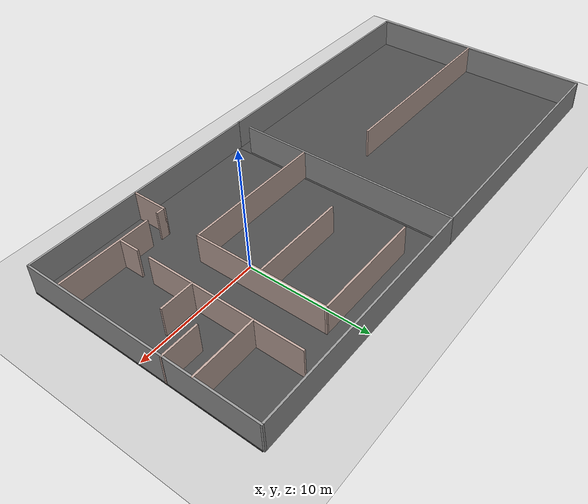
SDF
<sdf version="1.6">
 <world name="default">
  <light name="sun" type="directional">
   <cast_shadows>0</cast_shadows>
   <pose>0 0 10 0 -0 0</pose>
   <diffuse>0.8 0.8 0.8 1</diffuse>
   <specular>0.2 0.2 0.2 1</specular>
   <attenuation>
    <range>1000</range>
    <constant>0.9</constant>
    <linear>0.01</linear>
    <quadratic>0.001</quadratic>
   </attenuation>
   <direction>-0.5 0.1 -0.9</direction>
  </light>
  <model name="ground_plane">
   <static>1</static>
   <link name="link">
    <collision name="collision">
     <geometry><plane><normal>0 0 1</normal><size>100 100</size></plane></geometry>
     <surface><friction><ode><mu>100</mu><mu2>50</mu2></ode></friction></surface>
    </collision>
    <visual name="visual">
     <cast_shadows>0</cast_shadows>
     <geometry><plane><normal>0 0 1</normal><size>100 100</size></plane></geometry>
     <material>
      <script><uri>file://media/materials/scripts/gazebo.material</uri><name>Gazebo/Grey</name></script>
     </material>
    </visual>
   </link>
  </model>
  <gravity>0 0 -9.8</gravity>
  <magnetic_field>6e-06 2.3e-05 -4.2e-05</magnetic_field>
  <atmosphere type="adiabatic"/>
  <physics name="default_physics" default="0" type="ode">
   <max_step_size>0.001</max_step_size>
   <real_time_factor>1</real_time_factor>
   <real_time_update_rate>1000</real_time_update_rate>
  </physics>
  <scene><ambient>0.4 0.4 0.4 1</ambient><background>0.7 0.7 0.7 1</background><shadows>0</shadows></scene>
  <audio><device>default</device></audio>
  <spherical_coordinates>
   <surface_model>EARTH_WGS84</surface_model>
   <latitude_deg>0</latitude_deg>
   <longitude_deg>0</longitude_deg>
   <elevation>0</elevation>
   <heading_deg>0</heading_deg>
  </spherical_coordinates>
  <model name="PBL">
   <pose>0.00072 0.00769 0 0 -0 0</pose>
   <link name="Wall_11">
    <collision name="Wall_11_Collision">
     <geometry><box><size>7.5 0.15 2.5</size></box></geometry>
     <pose>0 0 1.25 0 -0 0</pose>
    </collision>
    <visual name="Wall_11_Visual">
     <pose>0 0 1.25 0 -0 0</pose>
     <geometry><box><size>7.5 0.15 2.5</size></box></geometry>
     <material>
      <script><uri>file://media/materials/scripts/gazebo.material</uri><name>Gazebo/Grey</name></script>
      <ambient>0.760784 0.662745 0.627451 1</ambient>
     </material>
     <meta><layer>0</layer></meta>
    </visual>
    <pose>6.23778 -6.99303 0 0 -0 0</pose>
   </link>
   <link name="Wall_16">
    <collision name="Wall_16_Collision">
     <geometry><box><size>4 0.15 2.5</size></box></geometry>
     <pose>0 0 1.25 0 -0 0</pose>
    </collision>
    <visual name="Wall_16_Visual">
     <pose>0 0 1.25 0 -0 0</pose>
     <geometry><box><size>4 0.15 2.5</size></box></geometry>
     <material>
      <script><uri>file://media/materials/scripts/gazebo.material</uri><name>Gazebo/Grey</name></script>
      <ambient>0.760784 0.662745 0.627451 1</ambient>
     </material>
     <meta><layer>0</layer></meta>
    </visual>
    <pose>4.92734 -2.20634 0 0 -0 1.5708</pose>
   </link>
   <link name="Wall_17">
    <collision name="Wall_17_Collision">
     <geometry><box><size>2.75 0.15 2.5</size></box></geometry>
     <pose>0 0 1.25 0 -0 0</pose>
    </collision>
    <visual name="Wall_17_Visual">
     <pose>0 0 1.25 0 -0 0</pose>
     <geometry><box><size>2.75 0.15 2.5</size></box></geometry>
     <material>
      <script><uri>file://media/materials/scripts/gazebo.material</uri><name>Gazebo/Grey</name></script>
      <ambient>0.760784 0.662745 0.627451 1</ambient>
     </material>
     <meta><layer>0</layer></meta>
    </visual>
    <pose>6.22734 -0.281341 0 0 -0 0</pose>
   </link>
   <link name="Wall_19">
    <collision name="Wall_19_Collision">
     <geometry><box><size>5.25 0.15 2.5</size></box></geometry>
     <pose>0 0 1.25 0 -0 0</pose>
    </collision>
    <visual name="Wall_19_Visual">
     <pose>0 0 1.25 0 -0 0</pose>
     <geometry><box><size>5.25 0.15 2.5</size></box></geometry>
     <material>
      <script><uri>file://media/materials/scripts/gazebo.material</uri><name>Gazebo/Grey</name></script>
      <ambient>0.760784 0.662745 0.627451 1</ambient>
     </material>
     <meta><layer>0</layer></meta>
    </visual>
    <pose>4.92734 2.26866 0 0 -0 1.5708</pose>
   </link>
   <link name="Wall_2">
    <collision name="Wall_2_Collision">
     <geometry><box><size>20.25 0.15 2.5</size></box></geometry>
     <pose>0 0 1.25 0 -0 0</pose>
    </collision>
    <visual name="Wall_2_Visual">
     <pose>0 0 1.25 0 -0 0</pose>
     <geometry><box><size>20.25 0.15 2.5</size></box></geometry>
     <material>
      <script><uri>file://media/materials/scripts/gazebo.material</uri><name>Gazebo/Grey</name></script>
      <ambient>0.180392 0.203922 0.211765 1</ambient>
     </material>
     <meta><layer>0</layer></meta>
    </visual>
    <pose>-0.011173 -9.925 0 0 -0 0</pose>
   </link>
   <link name="Wall_20">
    <collision name="Wall_20_Collision">
     <geometry><box><size>5.25 0.15 2.5</size></box></geometry>
     <pose>0 0 1.25 0 -0 0</pose>
    </collision>
    <visual name="Wall_20_Visual">
     <pose>0 0 1.25 0 -0 0</pose>
     <geometry><box><size>5.25 0.15 2.5</size></box></geometry>
     <material>
      <script><uri>file://media/materials/scripts/gazebo.material</uri><name>Gazebo/Grey</name></script>
      <ambient>0.760784 0.662745 0.627451 1</ambient>
     </material>
     <meta><layer>0</layer></meta>
    </visual>
    <pose>7.47734 4.81866 0 0 -0 0</pose>
   </link>
   <link name="Wall_24">
    <collision name="Wall_24_Collision">
     <geometry><box><size>3 0.15 2.5</size></box></geometry>
     <pose>0 0 1.25 0 -0 0</pose>
    </collision>
    <visual name="Wall_24_Visual">
     <pose>0 0 1.25 0 -0 0</pose>
     <geometry><box><size>3 0.15 2.5</size></box></geometry>
     <material>
      <script><uri>file://media/materials/scripts/gazebo.material</uri><name>Gazebo/Grey</name></script>
      <ambient>0.760784 0.662745 0.627451 1</ambient>
     </material>
     <meta><layer>0</layer></meta>
    </visual>
    <pose>8.63617 2.35911 0 0 -0 3.14159</pose>
   </link>
   <link name="Wall_26">
    <collision name="Wall_26_Collision">
     <geometry><box><size>3.9947 0.15 2.5</size></box></geometry>
     <pose>0 0 1.25 0 -0 0</pose>
    </collision>
    <visual name="Wall_26_Visual">
     <pose>0 0 1.25 0 -0 0</pose>
     <geometry><box><size>3.9947 0.15 2.5</size></box></geometry>
     <material>
      <script><uri>file://media/materials/scripts/gazebo.material</uri><name>Gazebo/Grey</name></script>
      <ambient>0.760784 0.662745 0.627451 1</ambient>
     </material>
     <meta><layer>0</layer></meta>
    </visual>
    <pose>4.92734 6.74101 0 0 -0 -1.5708</pose>
   </link>
   <link name="Wall_3">
    <collision name="Wall_3_Collision">
     <geometry><box><size>20 0.15 2.5</size></box></geometry>
     <pose>0 0 1.25 0 -0 0</pose>
    </collision>
    <visual name="Wall_3_Visual">
     <pose>0 0 1.25 0 -0 0</pose>
     <geometry><box><size>20 0.15 2.5</size></box></geometry>
     <material>
      <script><uri>file://media/materials/scripts/gazebo.material</uri><name>Gazebo/Grey</name></script>
      <ambient>0.180392 0.203922 0.211765 1</ambient>
     </material>
     <meta><layer>0</layer></meta>
    </visual>
    <pose>10.0388 0 0 0 -0 1.5708</pose>
   </link>
   <link name="Wall_32">
    <collision name="Wall_32_Collision">
     <geometry><box><size>1.75 0.15 2.5</size></box></geometry>
     <pose>0 0 1.25 0 -0 0</pose>
    </collision>
    <visual name="Wall_32_Visual">
     <pose>0 0 1.25 0 -0 0</pose>
     <geometry><box><size>1.75 0.15 2.5</size></box></geometry>
     <material>
      <script><uri>file://media/materials/scripts/gazebo.material</uri><name>Gazebo/Grey</name></script>
      <ambient>0.760784 0.662745 0.627451 1</ambient>
     </material>
     <meta><layer>0</layer></meta>
    </visual>
    <pose>4.93938 -6.13061 0 0 -0 -1.5708</pose>
   </link>
   <link name="Wall_34">
    <collision name="Wall_34_Collision">
     <geometry><box><size>11.6975 0.15 2.5</size></box></geometry>
     <pose>0 0 1.25 0 -0 0</pose>
    </collision>
    <visual name="Wall_34_Visual">
     <pose>0 0 1.25 0 -0 0</pose>
     <geometry><box><size>11.6975 0.15 2.5</size></box></geometry>
     <material>
      <script><uri>file://media/materials/scripts/gazebo.material</uri><name>Gazebo/Grey</name></script>
      <ambient>0.760784 0.662745 0.627451 1</ambient>
     </material>
     <meta><layer>0</layer></meta>
    </visual>
    <pose>-4.22123 -3.09591 0 0 -0 0</pose>
   </link>
   <link name="Wall_36">
    <collision name="Wall_36_Collision">
     <geometry><box><size>11 0.15 2.5</size></box></geometry>
     <pose>0 0 1.25 0 -0 0</pose>
    </collision>
    <visual name="Wall_36_Visual">
     <pose>0 0 1.25 0 -0 0</pose>
     <geometry><box><size>11 0.15 2.5</size></box></geometry>
     <material>
      <script><uri>file://media/materials/scripts/gazebo.material</uri><name>Gazebo/Grey</name></script>
      <ambient>0.760784 0.662745 0.627451 1</ambient>
     </material>
     <meta><layer>0</layer></meta>
    </visual>
    <pose>1.55253 2.32909 0 0 -0 1.5708</pose>
   </link>
   <link name="Wall_37">
    <collision name="Wall_37_Collision">
     <geometry><box><size>9 0.15 2.5</size></box></geometry>
     <pose>0 0 1.25 0 -0 0</pose>
    </collision>
    <visual name="Wall_37_Visual">
     <pose>0 0 1.25 0 -0 0</pose>
     <geometry><box><size>9 0.15 2.5</size></box></geometry>
     <material>
      <script><uri>file://media/materials/scripts/gazebo.material</uri><name>Gazebo/Grey</name></script>
      <ambient>0.760784 0.662745 0.627451 1</ambient>
     </material>
     <meta><layer>0</layer></meta>
    </visual>
    <pose>-2.87247 7.75409 0 0 -0 3.14159</pose>
   </link>
   <link name="Wall_39">
    <collision name="Wall_39_Collision">
     <geometry><box><size>7.75 0.15 2.5</size></box></geometry>
     <pose>0 0 1.25 0 -0 0</pose>
    </collision>
    <visual name="Wall_39_Visual">
     <pose>0 0 1.25 0 -0 0</pose>
     <geometry><box><size>7.75 0.15 2.5</size></box></geometry>
     <material>
      <script><uri>file://media/materials/scripts/gazebo.material</uri><name>Gazebo/Grey</name></script>
      <ambient>0.760784 0.662745 0.627451 1</ambient>
     </material>
     <meta><layer>0</layer></meta>
    </visual>
    <pose>-2.29145 2.4726 0 0 -0 0</pose>
   </link>
   <link name="Wall_4">
    <collision name="Wall_4_Collision">
     <geometry><box><size>20.25 0.15 2.5</size></box></geometry>
     <pose>0 0 1.25 0 -0 0</pose>
    </collision>
    <visual name="Wall_4_Visual">
     <pose>0 0 1.25 0 -0 0</pose>
     <geometry><box><size>20.25 0.15 2.5</size></box></geometry>
     <material>
      <script><uri>file://media/materials/scripts/gazebo.material</uri><name>Gazebo/Grey</name></script>
      <ambient>0.180392 0.203922 0.211765 1</ambient>
     </material>
     <meta><layer>0</layer></meta>
    </visual>
    <pose>-0.011173 9.925 0 0 -0 3.14159</pose>
   </link>
   <link name="Wall_5">
    <collision name="Wall_5_Collision">
     <geometry><box><size>18.75 0.15 2.5</size></box></geometry>
     <pose>0 0 1.25 0 -0 0</pose>
    </collision>
    <visual name="Wall_5_Visual">
     <pose>0 0 1.25 0 -0 0</pose>
     <geometry><box><size>18.75 0.15 2.5</size></box></geometry>
     <material>
      <script><uri>file://media/materials/scripts/gazebo.material</uri><name>Gazebo/Grey</name></script>
      <ambient>0.180392 0.203922 0.211765 1</ambient>
     </material>
     <meta><layer>0</layer></meta>
    </visual>
    <pose>-10.0612 0.625 0 0 -0 -1.5708</pose>
   </link>
   <link name="Wall_7">
    <collision name="Wall_7_Collision">
     <geometry><box><size>3 0.15 2.5</size></box></geometry>
     <pose>0 0 1.25 0 -0 0</pose>
    </collision>
    <visual name="Wall_7_Visual">
     <pose>0 0 1.25 0 -0 0</pose>
     <geometry><box><size>3 0.15 2.5</size></box></geometry>
     <material>
      <script><uri>file://media/materials/scripts/gazebo.material</uri><name>Gazebo/Grey</name></script>
      <ambient>0.760784 0.662745 0.627451 1</ambient>
     </material>
     <meta><layer>0</layer></meta>
    </visual>
    <pose>0.959733 -8.42602 0 0 -0 1.5708</pose>
   </link>
   <link name="Wall_8">
    <collision name="Wall_8_Collision">
     <geometry><box><size>0.75 0.15 2.5</size></box></geometry>
     <pose>0 0 1.25 0 -0 0</pose>
    </collision>
    <visual name="Wall_8_Visual">
     <pose>0 0 1.25 0 -0 0</pose>
     <geometry><box><size>0.75 0.15 2.5</size></box></geometry>
     <material>
      <script><uri>file://media/materials/scripts/gazebo.material</uri><name>Gazebo/Grey</name></script>
      <ambient>0.760784 0.662745 0.627451 1</ambient>
     </material>
     <meta><layer>0</layer></meta>
    </visual>
    <pose>1.25973 -7.00102 0 0 -0 0</pose>
   </link>
   <static>1</static>
  </model>
  <model name="gatagj">
   <pose>-20.9655 0.0095 0 0 -0 0</pose>
   <link name="Wall_10">
    <collision name="Wall_10_Collision">
     <geometry><box><size>21.8936 0.15 2.5</size></box></geometry>
     <pose>0 0 1.25 0 -0 0</pose>
    </collision>
    <visual name="Wall_10_Visual">
     <pose>0 0 1.25 0 -0 0</pose>
     <geometry><box><size>21.8936 0.15 2.5</size></box></geometry>
     <material>
      <script><uri>file://media/materials/scripts/gazebo.material</uri><name>Gazebo/Grey</name></script>
      <ambient>0.180392 0.203922 0.211765 1</ambient>
     </material>
     <meta><layer>0</layer></meta>
    </visual>
    <pose>0.00079 -9.925 0 0 -0 3.14159</pose>
   </link>
   <link name="Wall_15">
    <collision name="Wall_15_Collision">
     <geometry><box><size>21.75 0.15 2.5</size></box></geometry>
     <pose>0 0 1.25 0 -0 0</pose>
    </collision>
    <visual name="Wall_15_Visual">
     <pose>0 0 1.25 0 -0 0</pose>
     <geometry><box><size>21.75 0.15 2.5</size></box></geometry>
     <material>
      <script><uri>file://media/materials/scripts/gazebo.material</uri><name>Gazebo/Grey</name></script>
      <ambient>0.180392 0.203922 0.211765 1</ambient>
     </material>
     <meta><layer>0</layer></meta>
    </visual>
    <pose>0.072588 9.925 0 0 -0 3.14159</pose>
   </link>
   <link name="Wall_19">
    <collision name="Wall_19_Collision">
     <geometry><box><size>20.0005 0.15 2.5</size></box></geometry>
     <pose>0 0 1.25 0 -0 0</pose>
    </collision>
    <visual name="Wall_19_Visual">
     <pose>0 0 1.25 0 -0 0</pose>
     <geometry><box><size>20.0005 0.15 2.5</size></box></geometry>
     <material>
      <script><uri>file://media/materials/scripts/gazebo.material</uri><name>Gazebo/Grey</name></script>
      <ambient>0.180392 0.203922 0.211765 1</ambient>
     </material>
     <meta><layer>0</layer></meta>
    </visual>
    <pose>-10.871 -0 0 0 -0 1.5708</pose>
   </link>
   <link name="Wall_22">
    <collision name="Wall_22_Collision">
     <geometry><box><size>16.75 0.15 2.5</size></box></geometry>
     <pose>0 0 1.25 0 -0 0</pose>
    </collision>
    <visual name="Wall_22_Visual">
     <pose>0 0 1.25 0 -0 0</pose>
     <geometry><box><size>16.75 0.15 2.5</size></box></geometry>
     <material>
      <script><uri>file://media/materials/scripts/gazebo.material</uri><name>Gazebo/Grey</name></script>
      <ambient>0.760784 0.662745 0.627451 1</ambient>
     </material>
     <meta><layer>0</layer></meta>
    </visual>
    <pose>-2.57259 -0.753166 0 0 -0 0</pose>
   </link>
   <static>1</static>
  </model>
  <model name="asphalt_plane_0">
   <link name="link">
    <inertial>
     <mass>1</mass>
     <inertia><ixx>1</ixx><ixy>0</ixy><ixz>0</ixz><iyy>1</iyy><iyz>0</iyz><izz>1</izz></inertia>
    </inertial>
    <visual name="visual">
     <cast_shadows>0</cast_shadows>
     <geometry><box><size>21.9 19.8 0.1</size></box></geometry>
     <material>
      <script>
       <uri>model://asphalt_plane/materials/scripts</uri>
       <uri>model://asphalt_plane/materials/textures</uri>
       <name>vrc/asphalt</name>
      </script>
      <shader type="vertex"><normal_map>__default__</normal_map></shader>
      <ambient>0.5 0.5 0.5 1</ambient>
      <diffuse>0.5 0.5 0.5 1</diffuse>
      <specular>0.2 0.2 0.2 1</specular>
      <emissive>0 0 0 1</emissive>
     </material>
     <pose>1 -0.2 0 0 -0 0</pose>
    </visual>
    <collision name="collision">
     <pose>1 -0.2 0 0 -0 0</pose>
     <geometry><box><size>21.9 19.8 0.1</size></box></geometry>
     <surface>
      <friction>
       <ode><mu>1</mu><mu2>1</mu2><fdir1>0 0 0</fdir1><slip1>0</slip1><slip2>0</slip2></ode>
       <torsional>
        <coefficient>1</coefficient>
        <patch_radius>0</patch_radius>
        <surface_radius>0</surface_radius>
        <use_patch_radius>1</use_patch_radius>
        <ode><slip>0</slip></ode>
       </torsional>
      </friction>
      <bounce><restitution_coefficient>0</restitution_coefficient><threshold>1e+06</threshold></bounce>
      <contact>
       <collide_without_contact>0</collide_without_contact>
       <collide_without_contact_bitmask>1</collide_without_contact_bitmask>
       <collide_bitmask>1</collide_bitmask>
       <ode>
        <soft_cfm>0</soft_cfm>
        <soft_erp>0.2</soft_erp>
        <kp>1e+13</kp>
        <kd>1</kd>
        <max_vel>0.01</max_vel>
        <min_depth>0</min_depth>
       </ode>
       <bullet>
        <split_impulse>1</split_impulse>
        <split_impulse_penetration_threshold>-0.01</split_impulse_penetration_threshold>
        <soft_cfm>0</soft_cfm>
        <soft_erp>0.2</soft_erp>
        <kp>1e+13</kp>
        <kd>1</kd>
       </bullet>
      </contact>
     </surface>
    </collision>
   </link>
   <link name="link_clone_clone_clone">
    <pose>20.9435 0.026421 0 0 -0 0</pose>
    <inertial>
     <mass>1</mass>
     <inertia><ixx>1</ixx><ixy>0</ixy><ixz>0</ixz><iyy>1</iyy><iyz>0</iyz><izz>1</izz></inertia>
    </inertial>
    <visual name="visual">
     <cast_shadows>0</cast_shadows>
     <geometry><box><size>20 19.8 0.1</size></box></geometry>
     <material>
      <script>
       <uri>model://asphalt_plane/materials/scripts</uri>
       <uri>model://asphalt_plane/materials/textures</uri>
       <name>vrc/asphalt</name>
      </script>
      <shader type="vertex"><normal_map>__default__</normal_map></shader>
      <ambient>0.85 0.85 0.85 1</ambient>
      <diffuse>0.85 0.85 0.85 1</diffuse>
      <specular>0.2 0.2 0.2 1</specular>
      <emissive>0 0 0 1</emissive>
     </material>
     <pose>1 -0.2 0 0 -0 0</pose>
    </visual>
    <collision name="collision">
     <pose>1 -0.2 0 0 -0 0</pose>
     <geometry><box><size>20 19.8 0.1</size></box></geometry>
     <surface>
      <friction>
       <ode><mu>1</mu><mu2>1</mu2><fdir1>0 0 0</fdir1><slip1>0</slip1><slip2>0</slip2></ode>
       <torsional>
        <coefficient>1</coefficient>
        <patch_radius>0</patch_radius>
        <surface_radius>0</surface_radius>
        <use_patch_radius>1</use_patch_radius>
        <ode><slip>0</slip></ode>
       </torsional>
      </friction>
      <bounce><restitution_coefficient>0</restitution_coefficient><threshold>1e+06</threshold></bounce>
      <contact>
       <collide_without_contact>0</collide_without_contact>
       <collide_without_contact_bitmask>1</collide_without_contact_bitmask>
       <collide_bitmask>1</collide_bitmask>
       <ode>
        <soft_cfm>0</soft_cfm>
        <soft_erp>0.2</soft_erp>
        <kp>1e+13</kp>
        <kd>1</kd>
        <max_vel>0.01</max_vel>
        <min_depth>0</min_depth>
       </ode>
       <bullet>
        <split_impulse>1</split_impulse>
        <split_impulse_penetration_threshold>-0.01</split_impulse_penetration_threshold>
        <soft_cfm>0</soft_cfm>
        <soft_erp>0.2</soft_erp>
        <kp>1e+13</kp>
        <kd>1</kd>
       </bullet>
      </contact>
     </surface>
    </collision>
   </link>
   <static>1</static>
   <pose>-21.7884 0.154564 -0.03 0 -0 0</pose>
  </model>
 </world>
</sdf>
